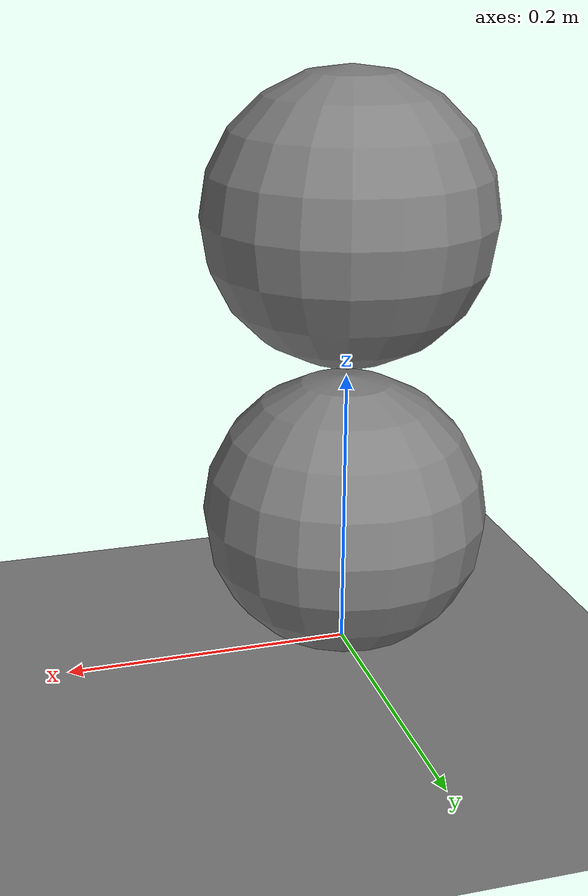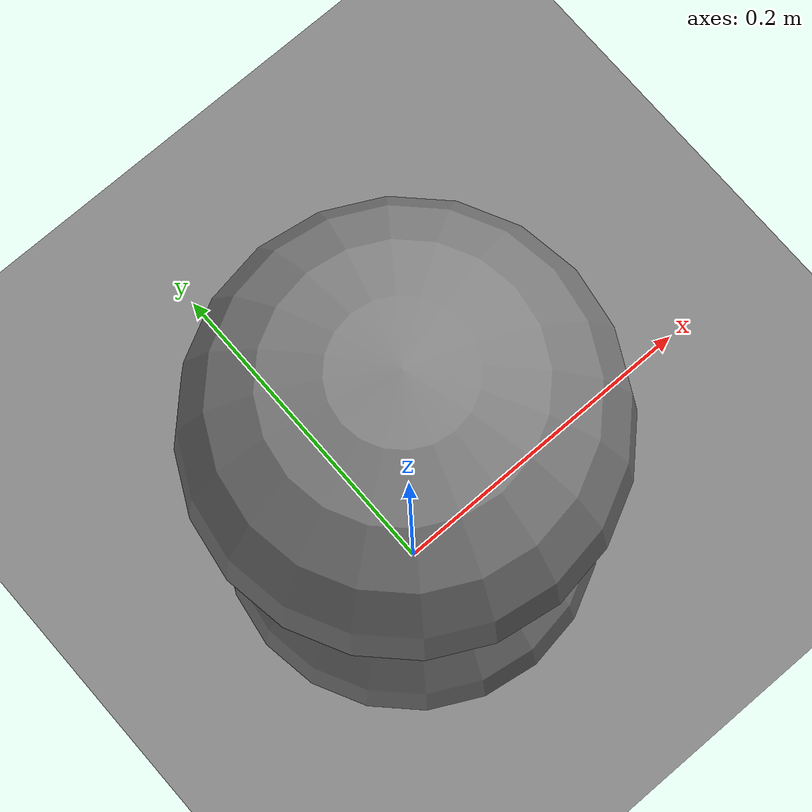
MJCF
<mujoco model="wake_cycle">
        <option gravity="0 0 -9.81" timestep="0.002" sleep_tolerance="0.1">
            <flag sleep="enable"/>
        </option>
        <worldbody>
            <geom type="plane" size="5 5 0.1" solref="0.005 1.5"/>
            <body name="A" pos="0 0 0.1">
                <freejoint name="jA"/>
                <geom type="sphere" size="0.1" mass="1.0" solref="0.005 1.5"/>
            </body>
            <body name="B" pos="0 0 0.31">
                <freejoint name="jB"/>
                <geom type="sphere" size="0.1" mass="1.0" solref="0.005 1.5"/>
            </body>
        </worldbody>
    </mujoco>
